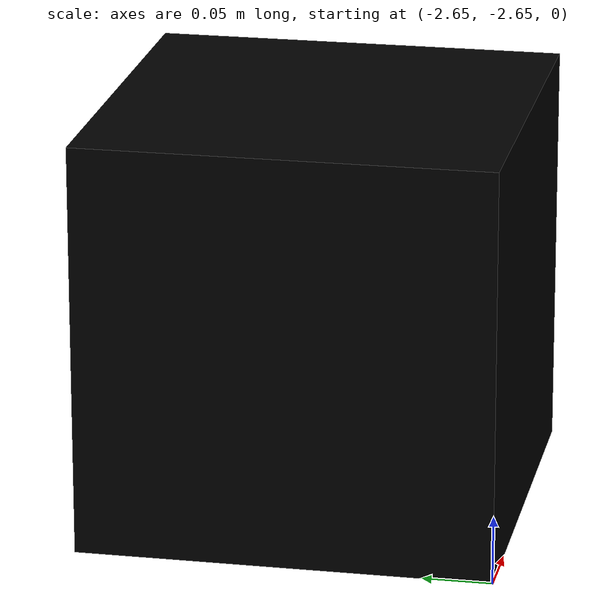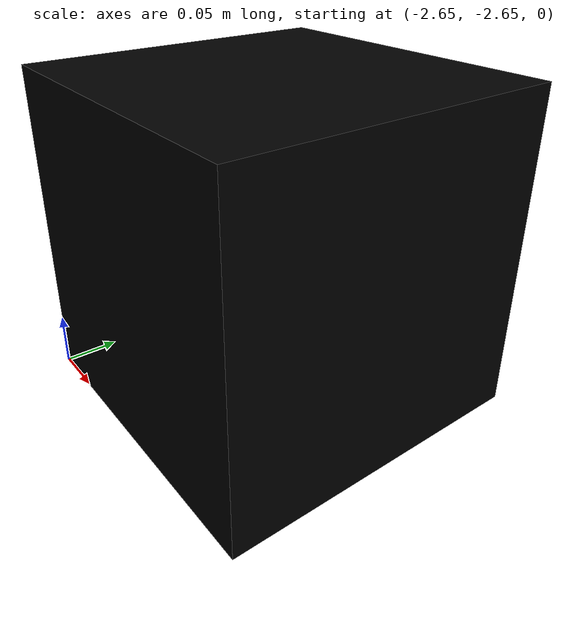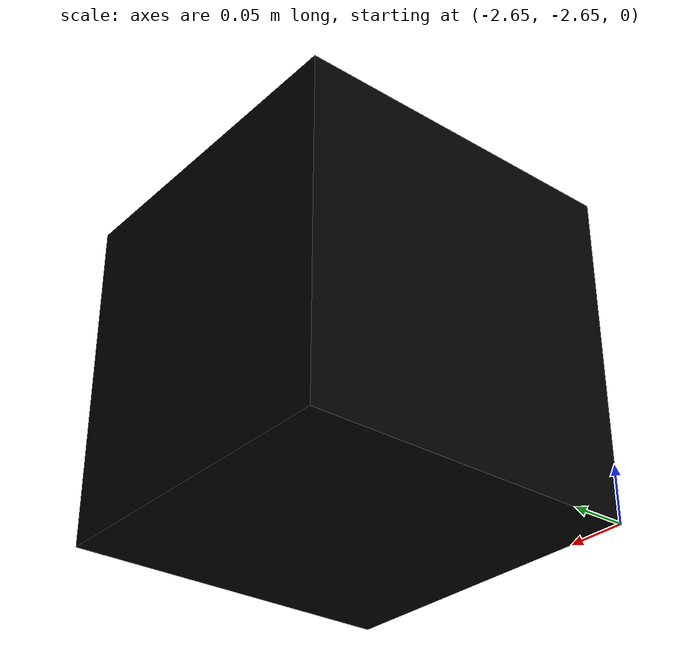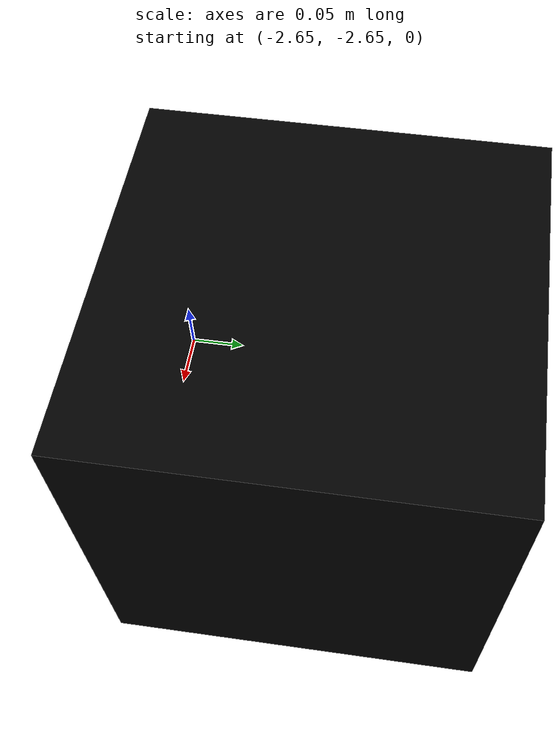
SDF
<?xml version='1.0'?>
<sdf version='1.4'>
  <model name="AruCo_Block_14">
    <static>true</static>
    <link name='chassis'>
            <pose>-2.5 -2.5 0.15 0 0 0</pose>

            <collision name='collision'>
              <geometry>
                <box>
                  <size>.3 .3 .3</size>
                </box>
              </geometry>
            </collision>

            <visual name='visual_14'>
              <geometry>
                <box>
                  <size>.3 .3 .3</size>
                </box>
              </geometry>
              <material>
                <script>
                <uri>model://AruCo_Block_14/materials/scripts</uri>
                <uri>model://AruCo_Block_14/materials/textures</uri>
                <name>block14</name>
                </script>
                <ambient>0 0 0 1</ambient>
                <diffuse>0 0 0 1</diffuse>
                <specular>0 0 0 0</specular>
                <emissive>1 1 1 1</emissive>
              </material>
            </visual>
          </link>
  </model>
</sdf>
